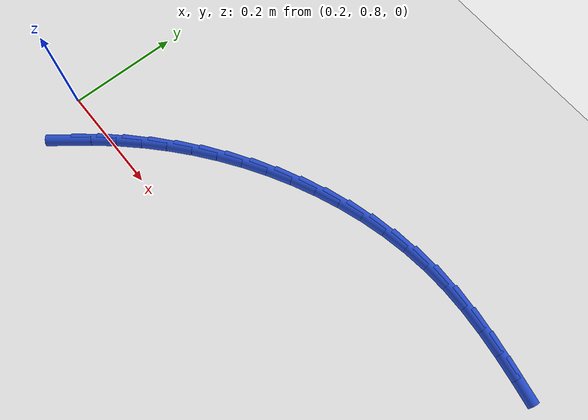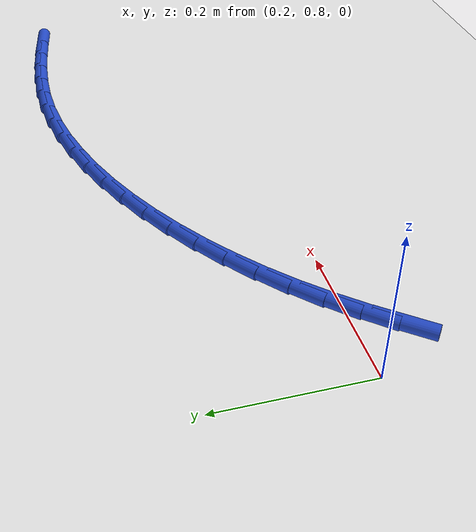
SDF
<sdf version="1.6">
 <world name="default">
  <model name="ground_plane">
   <static>1</static>
   <link name="link">
    <collision name="collision">
     <geometry><plane><normal>0 0 1</normal><size>100 100</size></plane></geometry>
     <surface><friction><ode><mu>100</mu><mu2>50</mu2></ode></friction></surface>
    </collision>
    <visual name="visual">
     <cast_shadows>0</cast_shadows>
     <geometry><plane><normal>0 0 1</normal><size>100 100</size></plane></geometry>
     <material>
      <script><uri>file://media/materials/scripts/gazebo.material</uri><name>Gazebo/WhiteGlow</name></script>
     </material>
    </visual>
   </link>
  </model>
  <model name="line">
   <link name="link_18">
    <pose>0.261688679395604 0.7443703428646884 0.01 0 1.57 0.9017972293461288</pose>
    <collision name="collision">
     <geometry><cylinder><radius>0.01</radius><length>0.08</length></cylinder></geometry>
    </collision>
    <visual name="visual">
     <material>
      <script><name>Gazebo/Blue</name><uri>file://media/materials/scripts/gazebo.material</uri></script>
     </material>
     <geometry><cylinder><radius>0.01</radius><length>0.08</length></cylinder></geometry>
    </visual>
   </link>
   <link name="link_19">
    <pose>0.28931897299717135 0.779317691034231 0.01 0 1.57 0.8546167411335518</pose>
    <collision name="collision">
     <geometry><cylinder><radius>0.01</radius><length>0.08</length></cylinder></geometry>
    </collision>
    <visual name="visual">
     <material>
      <script><name>Gazebo/Blue</name><uri>file://media/materials/scripts/gazebo.material</uri></script>
     </material>
     <geometry><cylinder><radius>0.01</radius><length>0.08</length></cylinder></geometry>
    </visual>
   </link>
   <link name="link_20">
    <pose>0.3186616502731066 0.8130320723745486 0.01 0 1.57 0.8052923010427596</pose>
    <collision name="collision">
     <geometry><cylinder><radius>0.01</radius><length>0.08</length></cylinder></geometry>
    </collision>
    <visual name="visual">
     <material>
      <script><name>Gazebo/Blue</name><uri>file://media/materials/scripts/gazebo.material</uri></script>
     </material>
     <geometry><cylinder><radius>0.01</radius><length>0.08</length></cylinder></geometry>
    </visual>
   </link>
   <link name="link_21">
    <pose>0.34978634042201817 0.8454204672995723 0.01 0 1.57 0.7541902982342445</pose>
    <collision name="collision">
     <geometry><cylinder><radius>0.01</radius><length>0.08</length></cylinder></geometry>
    </collision>
    <visual name="visual">
     <material>
      <script><name>Gazebo/Blue</name><uri>file://media/materials/scripts/gazebo.material</uri></script>
     </material>
     <geometry><cylinder><radius>0.01</radius><length>0.08</length></cylinder></geometry>
    </visual>
   </link>
   <link name="link_22">
    <pose>0.3827466531985884 0.8763851689411416 0.01 0 1.57 0.7027724105210611</pose>
    <collision name="collision">
     <geometry><cylinder><radius>0.01</radius><length>0.08</length></cylinder></geometry>
    </collision>
    <visual name="visual">
     <material>
      <script><name>Gazebo/Blue</name><uri>file://media/materials/scripts/gazebo.material</uri></script>
     </material>
     <geometry><cylinder><radius>0.01</radius><length>0.08</length></cylinder></geometry>
    </visual>
   </link>
   <link name="link_23">
    <pose>0.4174598176858261 0.9057885655078715 0.01 0 1.57 0.6513601458947901</pose>
    <collision name="collision">
     <geometry><cylinder><radius>0.01</radius><length>0.08</length></cylinder></geometry>
    </collision>
    <visual name="visual">
     <material>
      <script><name>Gazebo/Blue</name><uri>file://media/materials/scripts/gazebo.material</uri></script>
     </material>
     <geometry><cylinder><radius>0.01</radius><length>0.08</length></cylinder></geometry>
    </visual>
   </link>
   <link name="link_24">
    <pose>0.4537741127236348 0.9334728703982391 0.01 0 1.57 0.5994964725189268</pose>
    <collision name="collision">
     <geometry><cylinder><radius>0.01</radius><length>0.08</length></cylinder></geometry>
    </collision>
    <visual name="visual">
     <material>
      <script><name>Gazebo/Blue</name><uri>file://media/materials/scripts/gazebo.material</uri></script>
     </material>
     <geometry><cylinder><radius>0.01</radius><length>0.08</length></cylinder></geometry>
    </visual>
   </link>
   <link name="link_25">
    <pose>0.49153728418290193 0.959280141064228 0.01 0 1.57 0.5467284496184864</pose>
    <collision name="collision">
     <geometry><cylinder><radius>0.01</radius><length>0.08</length></cylinder></geometry>
    </collision>
    <visual name="visual">
     <material>
      <script><name>Gazebo/Blue</name><uri>file://media/materials/scripts/gazebo.material</uri></script>
     </material>
     <geometry><cylinder><radius>0.01</radius><length>0.08</length></cylinder></geometry>
    </visual>
   </link>
   <link name="link_26">
    <pose>0.5305970779345149 0.9830524349578204 0.01 0 1.57 0.49260954397146894</pose>
    <collision name="collision">
     <geometry><cylinder><radius>0.01</radius><length>0.08</length></cylinder></geometry>
    </collision>
    <visual name="visual">
     <material>
      <script><name>Gazebo/Blue</name><uri>file://media/materials/scripts/gazebo.material</uri></script>
     </material>
     <geometry><cylinder><radius>0.01</radius><length>0.08</length></cylinder></geometry>
    </visual>
   </link>
   <link name="link_27">
    <pose>0.5708012398493613 1.004631809531 0.01 0 1.57 0.4366985960987318</pose>
    <collision name="collision">
     <geometry><cylinder><radius>0.01</radius><length>0.08</length></cylinder></geometry>
    </collision>
    <visual name="visual">
     <material>
      <script><name>Gazebo/Blue</name><uri>file://media/materials/scripts/gazebo.material</uri></script>
     </material>
     <geometry><cylinder><radius>0.01</radius><length>0.08</length></cylinder></geometry>
    </visual>
   </link>
   <link name="link_28">
    <pose>0.6119975157983282 1.0238603222357496 0.01 0 1.57 0.3785618344518044</pose>
    <collision name="collision">
     <geometry><cylinder><radius>0.01</radius><length>0.08</length></cylinder></geometry>
    </collision>
    <visual name="visual">
     <material>
      <script><name>Gazebo/Blue</name><uri>file://media/materials/scripts/gazebo.material</uri></script>
     </material>
     <geometry><cylinder><radius>0.01</radius><length>0.08</length></cylinder></geometry>
    </visual>
   </link>
   <link name="link_29">
    <pose>0.6540336516523026 1.0405800305240513 0.01 0 1.57 0.3177789747133592</pose>
    <collision name="collision">
     <geometry><cylinder><radius>0.01</radius><length>0.08</length></cylinder></geometry>
    </collision>
    <visual name="visual">
     <material>
      <script><name>Gazebo/Blue</name><uri>file://media/materials/scripts/gazebo.material</uri></script>
     </material>
     <geometry><cylinder><radius>0.01</radius><length>0.08</length></cylinder></geometry>
    </visual>
   </link>
   <link name="link_30">
    <pose>0.6967573932821725 1.054632991847889 0.01 0 1.57 0.2539546093797289</pose>
    <collision name="collision">
     <geometry><cylinder><radius>0.01</radius><length>0.08</length></cylinder></geometry>
    </collision>
    <visual name="visual">
     <material>
      <script><name>Gazebo/Blue</name><uri>file://media/materials/scripts/gazebo.material</uri></script>
     </material>
     <geometry><cylinder><radius>0.01</radius><length>0.08</length></cylinder></geometry>
    </visual>
   </link>
   <link name="link_31">
    <pose>0.7400164865588247 1.0658612636592453 0.01 0 1.57 0.18673611924459146</pose>
    <collision name="collision">
     <geometry><cylinder><radius>0.01</radius><length>0.08</length></cylinder></geometry>
    </collision>
    <visual name="visual">
     <material>
      <script><name>Gazebo/Blue</name><uri>file://media/materials/scripts/gazebo.material</uri></script>
     </material>
     <geometry><cylinder><radius>0.01</radius><length>0.08</length></cylinder></geometry>
    </visual>
   </link>
   <link name="link_32">
    <pose>0.7836586773531469 1.0741069034101027 0.01 0 1.57 0.11583904248746658</pose>
    <collision name="collision">
     <geometry><cylinder><radius>0.01</radius><length>0.08</length></cylinder></geometry>
    </collision>
    <visual name="visual">
     <material>
      <script><name>Gazebo/Blue</name><uri>file://media/materials/scripts/gazebo.material</uri></script>
     </material>
     <geometry><cylinder><radius>0.01</radius><length>0.08</length></cylinder></geometry>
    </visual>
   </link>
   <link name="link_33">
    <pose>0.8275317115360259 1.0792119685524442 0.01 0 1.57 0.0412070935962064</pose>
    <collision name="collision">
     <geometry><cylinder><radius>0.01</radius><length>0.08</length></cylinder></geometry>
    </collision>
    <visual name="visual">
     <material>
      <script><name>Gazebo/Blue</name><uri>file://media/materials/scripts/gazebo.material</uri></script>
     </material>
     <geometry><cylinder><radius>0.01</radius><length>0.08</length></cylinder></geometry>
    </visual>
   </link>
   <link name="link_34">
    <pose>0.8714844123988754 1.081024157440585 0.01 0 1.57 -0.030846933155782144</pose>
    <collision name="collision">
     <geometry><cylinder><radius>0.01</radius><length>0.08</length></cylinder></geometry>
    </collision>
    <visual name="visual">
     <material>
      <script><name>Gazebo/Blue</name><uri>file://media/materials/scripts/gazebo.material</uri></script>
     </material>
     <geometry><cylinder><radius>0.01</radius><length>0.08</length></cylinder></geometry>
    </visual>
   </link>
   <link name="link_35">
    <pose>0.9154185726897079 1.0796684933210483 0.01 0 1.57 -0.09089073254683624</pose>
    <collision name="collision">
     <geometry><cylinder><radius>0.01</radius><length>0.08</length></cylinder></geometry>
    </collision>
    <visual name="visual">
     <material>
      <script><name>Gazebo/Blue</name><uri>file://media/materials/scripts/gazebo.material</uri></script>
     </material>
     <geometry><cylinder><radius>0.01</radius><length>0.08</length></cylinder></geometry>
    </visual>
   </link>
   <link name="link_36">
    <pose>0.9593119972415886 1.0756679654503467 0.01 0 1.57 -0.13807893030556345</pose>
    <collision name="collision">
     <geometry><cylinder><radius>0.01</radius><length>0.08</length></cylinder></geometry>
    </collision>
    <visual name="visual">
     <material>
      <script><name>Gazebo/Blue</name><uri>file://media/materials/scripts/gazebo.material</uri></script>
     </material>
     <geometry><cylinder><radius>0.01</radius><length>0.08</length></cylinder></geometry>
    </visual>
   </link>
   <link name="link_37">
    <pose>1.0031483661213207 1.069576323237492 0.01 0 1.57 -0.1725911667560794</pose>
    <collision name="collision">
     <geometry><cylinder><radius>0.01</radius><length>0.08</length></cylinder></geometry>
    </collision>
    <visual name="visual">
     <material>
      <script><name>Gazebo/Blue</name><uri>file://media/materials/scripts/gazebo.material</uri></script>
     </material>
     <geometry><cylinder><radius>0.01</radius><length>0.08</length></cylinder></geometry>
    </visual>
   </link>
   <link name="link_38">
    <pose>1.0469113593957065 1.0619473160914963 0.01 0 1.57 -0.1947072820093124</pose>
    <collision name="collision">
     <geometry><cylinder><radius>0.01</radius><length>0.08</length></cylinder></geometry>
    </collision>
    <visual name="visual">
     <material>
      <script><name>Gazebo/Blue</name><uri>file://media/materials/scripts/gazebo.material</uri></script>
     </material>
     <geometry><cylinder><radius>0.01</radius><length>0.08</length></cylinder></geometry>
    </visual>
   </link>
  </model>
 </world>
</sdf>
